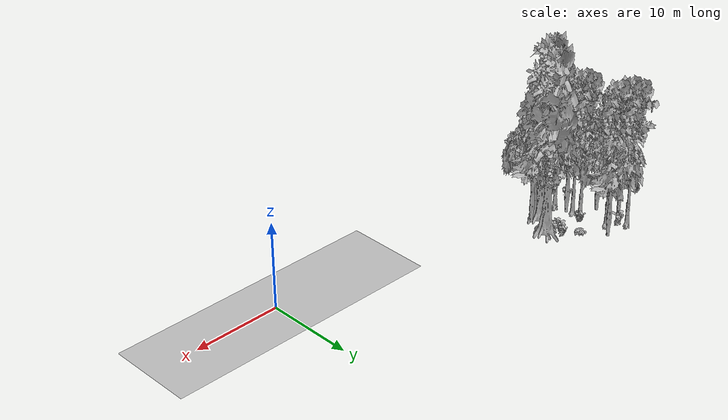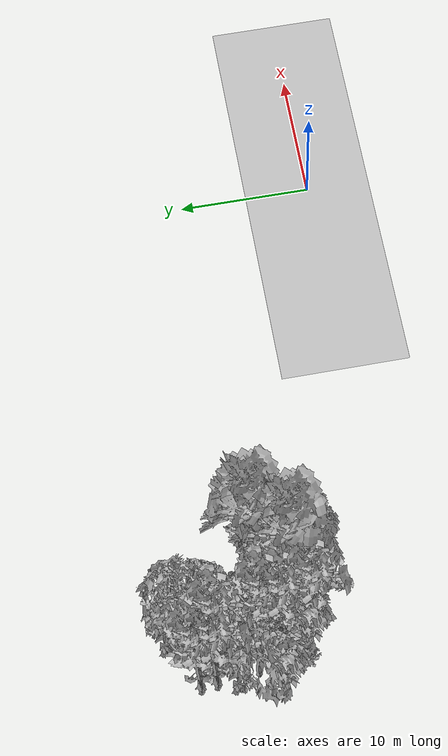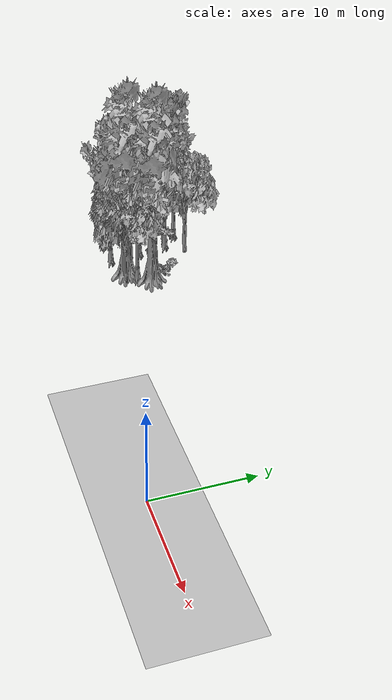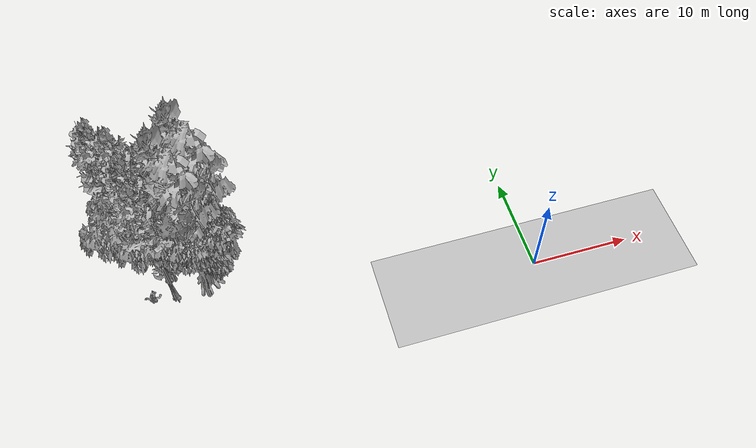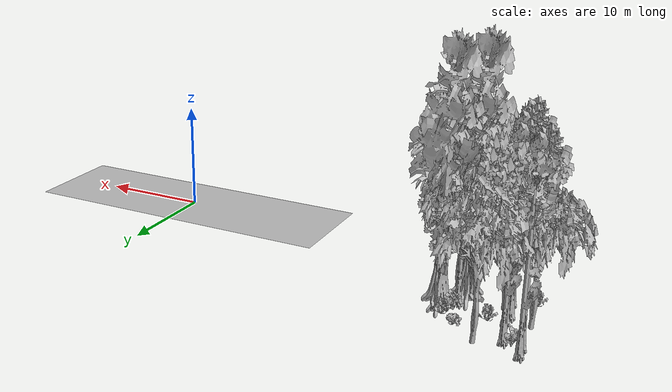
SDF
<sdf version="1.7">
 <world name="default">
  <model name="ground_plane">
   <static>1</static>
   <link name="link">
    <collision name="collision">
     <geometry><plane><normal>0 0 1</normal><size>100 100</size></plane></geometry>
     <surface><contact><ode><min_depth>0.01</min_depth><max_vel>0</max_vel></ode></contact></surface>
    </collision>
    <visual name="grass">
     <cast_shadows>0</cast_shadows>
     <geometry>
      <mesh>
       <scale>0.5814285714285714 0.18142857142857144 0.1</scale>
       <uri>file://grass_plane/meshes/grass_plane.dae</uri>
      </mesh>
     </geometry>
    </visual>
   </link>
  </model>
  <model name="Tree 12">
   <static>1</static>
   <pose>-35.485700106761605 8.818077774330469 0 1.57079 -0 0</pose>
   <link name="link">
    <collision name="collision">
     <geometry><mesh><scale>3.5 5 3.5</scale><uri>model://tree_9/meshes/tree_9.obj</uri></mesh></geometry>
    </collision>
    <visual name="visual">
     <geometry><mesh><scale>3.5 5 3.5</scale><uri>model://tree_9/meshes/tree_9.obj</uri></mesh></geometry>
    </visual>
   </link>
  </model>
  <model name="Tree 31">
   <static>1</static>
   <pose>-31.620926742056316 7.431973856351036 0 1.57079 -0 0</pose>
   <link name="link">
    <collision name="collision">
     <geometry><mesh><scale>3.5 5 3.5</scale><uri>model://tree_4/meshes/tree_4.obj</uri></mesh></geometry>
    </collision>
    <visual name="visual">
     <geometry><mesh><scale>3.5 5 3.5</scale><uri>model://tree_4/meshes/tree_4.obj</uri></mesh></geometry>
    </visual>
   </link>
  </model>
  <model name="Tree 46">
   <static>1</static>
   <pose>-34.92136527826986 8.428432010104999 0 1.57079 -0 0</pose>
   <link name="link">
    <collision name="collision">
     <geometry><mesh><scale>3.5 5 3.5</scale><uri>model://tree_2/meshes/tree_2.obj</uri></mesh></geometry>
    </collision>
    <visual name="visual">
     <geometry><mesh><scale>3.5 5 3.5</scale><uri>model://tree_2/meshes/tree_2.obj</uri></mesh></geometry>
    </visual>
   </link>
  </model>
  <model name="Tree 59">
   <static>1</static>
   <pose>-36.06261478769515 13.089860364397865 0 1.57079 -0 0</pose>
   <link name="link">
    <collision name="collision">
     <geometry><mesh><scale>3.5 5 3.5</scale><uri>model://tree_9/meshes/tree_9.obj</uri></mesh></geometry>
    </collision>
    <visual name="visual">
     <geometry><mesh><scale>3.5 5 3.5</scale><uri>model://tree_9/meshes/tree_9.obj</uri></mesh></geometry>
    </visual>
   </link>
  </model>
  <model name="Tree 104">
   <static>1</static>
   <pose>-31.0419377074056 8.472955195480143 0 1.57079 -0 0</pose>
   <link name="link">
    <collision name="collision">
     <geometry><mesh><scale>3.5 5 3.5</scale><uri>model://tree_9/meshes/tree_9.obj</uri></mesh></geometry>
    </collision>
    <visual name="visual">
     <geometry><mesh><scale>3.5 5 3.5</scale><uri>model://tree_9/meshes/tree_9.obj</uri></mesh></geometry>
    </visual>
   </link>
  </model>
  <model name="Tree 110">
   <static>1</static>
   <pose>-29.879728151543432 9.776542722202372 0 1.57079 -0 0</pose>
   <link name="link">
    <collision name="collision">
     <geometry><mesh><scale>3.5 5 3.5</scale><uri>model://tree_4/meshes/tree_4.obj</uri></mesh></geometry>
    </collision>
    <visual name="visual">
     <geometry><mesh><scale>3.5 5 3.5</scale><uri>model://tree_4/meshes/tree_4.obj</uri></mesh></geometry>
    </visual>
   </link>
  </model>
  <model name="Tree 149">
   <static>1</static>
   <pose>-37.71704961691479 14.633097613912096 0 1.57079 -0 0</pose>
   <link name="link">
    <collision name="collision">
     <geometry><mesh><scale>3.5 5 3.5</scale><uri>model://tree_9/meshes/tree_9.obj</uri></mesh></geometry>
    </collision>
    <visual name="visual">
     <geometry><mesh><scale>3.5 5 3.5</scale><uri>model://tree_9/meshes/tree_9.obj</uri></mesh></geometry>
    </visual>
   </link>
  </model>
  <model name="Tree 160">
   <static>1</static>
   <pose>-30.980108157397215 7.095595567632234 0 1.57079 -0 0</pose>
   <link name="link">
    <collision name="collision">
     <geometry><mesh><scale>3.5 5 3.5</scale><uri>model://tree_2/meshes/tree_2.obj</uri></mesh></geometry>
    </collision>
    <visual name="visual">
     <geometry><mesh><scale>3.5 5 3.5</scale><uri>model://tree_2/meshes/tree_2.obj</uri></mesh></geometry>
    </visual>
   </link>
  </model>
  <model name="Tree 218">
   <static>1</static>
   <pose>-34.29771897723734 14.777130316766144 0 1.57079 -0 0</pose>
   <link name="link">
    <collision name="collision">
     <geometry><mesh><scale>3.5 5 3.5</scale><uri>model://tree_2/meshes/tree_2.obj</uri></mesh></geometry>
    </collision>
    <visual name="visual">
     <geometry><mesh><scale>3.5 5 3.5</scale><uri>model://tree_2/meshes/tree_2.obj</uri></mesh></geometry>
    </visual>
   </link>
  </model>
  <model name="Tree 237">
   <static>1</static>
   <pose>-37.63157668020729 10.491856192537508 0 1.57079 -0 0</pose>
   <link name="link">
    <collision name="collision">
     <geometry><mesh><scale>3.5 5 3.5</scale><uri>model://tree_2/meshes/tree_2.obj</uri></mesh></geometry>
    </collision>
    <visual name="visual">
     <geometry><mesh><scale>3.5 5 3.5</scale><uri>model://tree_2/meshes/tree_2.obj</uri></mesh></geometry>
    </visual>
   </link>
  </model>
  <model name="Tree 238">
   <static>1</static>
   <pose>-37.60881148551684 13.485772793585689 0 1.57079 -0 0</pose>
   <link name="link">
    <collision name="collision">
     <geometry><mesh><scale>3.5 5 3.5</scale><uri>model://tree_9/meshes/tree_9.obj</uri></mesh></geometry>
    </collision>
    <visual name="visual">
     <geometry><mesh><scale>3.5 5 3.5</scale><uri>model://tree_9/meshes/tree_9.obj</uri></mesh></geometry>
    </visual>
   </link>
  </model>
  <model name="Tree 239">
   <static>1</static>
   <pose>-32.19416140174117 7.7520003996441424 0 1.57079 -0 0</pose>
   <link name="link">
    <collision name="collision">
     <geometry><mesh><scale>3.5 5 3.5</scale><uri>model://tree_2/meshes/tree_2.obj</uri></mesh></geometry>
    </collision>
    <visual name="visual">
     <geometry><mesh><scale>3.5 5 3.5</scale><uri>model://tree_2/meshes/tree_2.obj</uri></mesh></geometry>
    </visual>
   </link>
  </model>
  <model name="Tree 303">
   <static>1</static>
   <pose>-35.032084827537446 6.645139433751041 0 1.57079 -0 0</pose>
   <link name="link">
    <collision name="collision">
     <geometry><mesh><scale>3.5 5 3.5</scale><uri>model://tree_9/meshes/tree_9.obj</uri></mesh></geometry>
    </collision>
    <visual name="visual">
     <geometry><mesh><scale>3.5 5 3.5</scale><uri>model://tree_9/meshes/tree_9.obj</uri></mesh></geometry>
    </visual>
   </link>
  </model>
  <model name="Tree 366">
   <static>1</static>
   <pose>-35.3881443386658 9.973803736113311 0 1.57079 -0 0</pose>
   <link name="link">
    <collision name="collision">
     <geometry><mesh><scale>3.5 5 3.5</scale><uri>model://tree_9/meshes/tree_9.obj</uri></mesh></geometry>
    </collision>
    <visual name="visual">
     <geometry><mesh><scale>3.5 5 3.5</scale><uri>model://tree_9/meshes/tree_9.obj</uri></mesh></geometry>
    </visual>
   </link>
  </model>
  <model name="Tree 378">
   <static>1</static>
   <pose>-32.01070476550761 8.024484769407955 0 1.57079 -0 0</pose>
   <link name="link">
    <collision name="collision">
     <geometry><mesh><scale>3.5 5 3.5</scale><uri>model://tree_2/meshes/tree_2.obj</uri></mesh></geometry>
    </collision>
    <visual name="visual">
     <geometry><mesh><scale>3.5 5 3.5</scale><uri>model://tree_2/meshes/tree_2.obj</uri></mesh></geometry>
    </visual>
   </link>
  </model>
  <model name="Tree 423">
   <static>1</static>
   <pose>-30.589152361118625 7.120712231621386 0 1.57079 -0 0</pose>
   <link name="link">
    <collision name="collision">
     <geometry><mesh><scale>3.5 5 3.5</scale><uri>model://tree_2/meshes/tree_2.obj</uri></mesh></geometry>
    </collision>
    <visual name="visual">
     <geometry><mesh><scale>3.5 5 3.5</scale><uri>model://tree_2/meshes/tree_2.obj</uri></mesh></geometry>
    </visual>
   </link>
  </model>
  <model name="Bush 32">
   <static>1</static>
   <pose>-34.216555650696684 10.839022944087837 0 1.57079 -0 0</pose>
   <link name="link">
    <collision name="collision">
     <geometry><mesh><scale>2 2 2</scale><uri>model://bush_4/meshes/bush_4.obj</uri></mesh></geometry>
     <surface><contact><collide_without_contact>false</collide_without_contact></contact></surface>
    </collision>
    <visual name="visual">
     <geometry><mesh><scale>2 2 2</scale><uri>model://bush_4/meshes/bush_4.obj</uri></mesh></geometry>
    </visual>
   </link>
  </model>
  <model name="Bush 45">
   <static>1</static>
   <pose>-30.934171394955346 10.188654802207058 0 1.57079 -0 0</pose>
   <link name="link">
    <collision name="collision">
     <geometry><mesh><scale>2 2 2</scale><uri>model://bush_0/meshes/bush_0.obj</uri></mesh></geometry>
     <surface><contact><collide_without_contact>false</collide_without_contact></contact></surface>
    </collision>
    <visual name="visual">
     <geometry><mesh><scale>2 2 2</scale><uri>model://bush_0/meshes/bush_0.obj</uri></mesh></geometry>
    </visual>
   </link>
  </model>
  <model name="Bush 108">
   <static>1</static>
   <pose>-30.608865166485106 11.3892015602123 0 1.57079 -0 0</pose>
   <link name="link">
    <collision name="collision">
     <geometry><mesh><scale>2 2 2</scale><uri>model://bush_4/meshes/bush_4.obj</uri></mesh></geometry>
     <surface><contact><collide_without_contact>false</collide_without_contact></contact></surface>
    </collision>
    <visual name="visual">
     <geometry><mesh><scale>2 2 2</scale><uri>model://bush_4/meshes/bush_4.obj</uri></mesh></geometry>
    </visual>
   </link>
  </model>
  <model name="Bush 122">
   <static>1</static>
   <pose>-31.981643982900575 12.723963053465063 0 1.57079 -0 0</pose>
   <link name="link">
    <collision name="collision">
     <geometry><mesh><scale>2 2 2</scale><uri>model://bush_3/meshes/bush_3.obj</uri></mesh></geometry>
     <surface><contact><collide_without_contact>false</collide_without_contact></contact></surface>
    </collision>
    <visual name="visual">
     <geometry><mesh><scale>2 2 2</scale><uri>model://bush_3/meshes/bush_3.obj</uri></mesh></geometry>
    </visual>
   </link>
  </model>
  <model name="Bush 170">
   <static>1</static>
   <pose>-36.944110440433334 14.001367474362482 0 1.57079 -0 0</pose>
   <link name="link">
    <collision name="collision">
     <geometry><mesh><scale>2 2 2</scale><uri>model://bush_0/meshes/bush_0.obj</uri></mesh></geometry>
     <surface><contact><collide_without_contact>false</collide_without_contact></contact></surface>
    </collision>
    <visual name="visual">
     <geometry><mesh><scale>2 2 2</scale><uri>model://bush_0/meshes/bush_0.obj</uri></mesh></geometry>
    </visual>
   </link>
  </model>
  <model name="Bush 243">
   <static>1</static>
   <pose>-37.09610240617632 6.575830537160048 0 1.57079 -0 0</pose>
   <link name="link">
    <collision name="collision">
     <geometry><mesh><scale>2 2 2</scale><uri>model://bush_4/meshes/bush_4.obj</uri></mesh></geometry>
     <surface><contact><collide_without_contact>false</collide_without_contact></contact></surface>
    </collision>
    <visual name="visual">
     <geometry><mesh><scale>2 2 2</scale><uri>model://bush_4/meshes/bush_4.obj</uri></mesh></geometry>
    </visual>
   </link>
  </model>
  <model name="Bush 306">
   <static>1</static>
   <pose>-30.91115883468212 10.86020771800171 0 1.57079 -0 0</pose>
   <link name="link">
    <collision name="collision">
     <geometry><mesh><scale>2 2 2</scale><uri>model://bush_0/meshes/bush_0.obj</uri></mesh></geometry>
     <surface><contact><collide_without_contact>false</collide_without_contact></contact></surface>
    </collision>
    <visual name="visual">
     <geometry><mesh><scale>2 2 2</scale><uri>model://bush_0/meshes/bush_0.obj</uri></mesh></geometry>
    </visual>
   </link>
  </model>
 </world>
</sdf>
